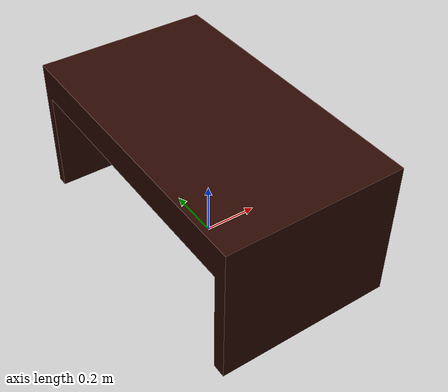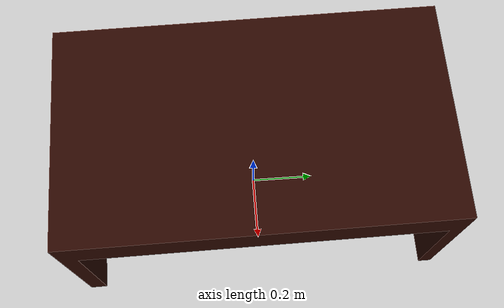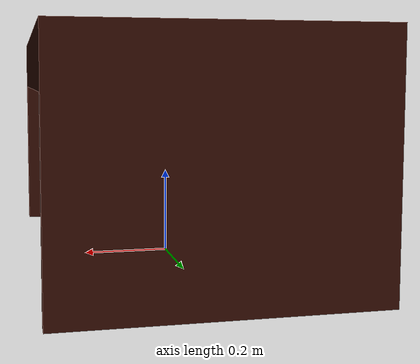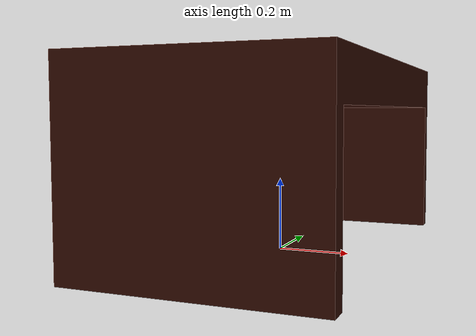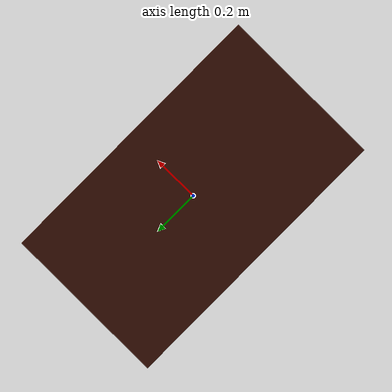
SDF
<?xml version="1.0"?>
<sdf version="1.4">

  <model name="ttfest_bridge">
    <static>true</static>
    <link name="base">
      <pose>0 0 0 0 0 0</pose>

      <visual name="visual">
        <geometry>
          <mesh>
            <uri>model://ttfest_bridge/meshes/untitled.dae</uri>
          </mesh>
        </geometry>
      </visual>

      <collision name="collision">
        <geometry>
          <mesh>
            <uri>model://ttfest_bridge/meshes/untitled.dae</uri>
          </mesh>
        </geometry>
      </collision>
    </link>
  </model>
</sdf>
